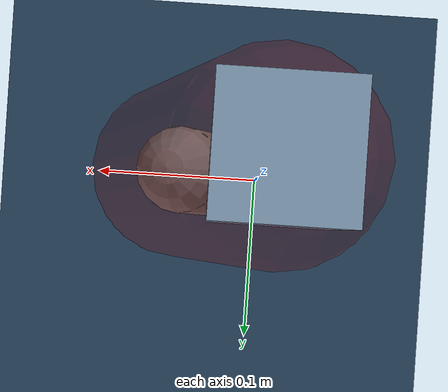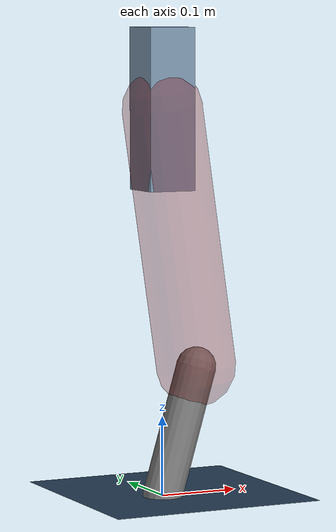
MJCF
<mujoco model="Hopper2D">
	<compiler inertiafromgeom="true" angle="radian" />
	<option timestep="0.001" integrator="implicit" cone="elliptic" solver="Newton" tolerance="1e-10" />

	<default>
		<geom contype="1" conaffinity="1" condim="3" friction="2 0.005 0.0001" solref="0.005 1" />
		<joint limited="true" damping="0.1" />
	</default>

	<asset>
		<texture name="skybox" type="skybox" builtin="gradient" rgb1=".4 .6 .8" rgb2="0 0 0" width="800" height="800" />
		<texture name="grid" type="2d" builtin="checker" rgb1=".1 .2 .3" rgb2=".2 .3 .4" width="300" height="300" mark="edge" markrgb=".2 .3 .4" />
		<material name="ground" texture="grid" texrepeat="1 1" texuniform="true" reflectance="0.1" />
		<material name="leg" rgba="0.5 0.6 0.7 1" />
	</asset>

	<worldbody>

		<geom name="floor" type="plane" size="5 5 0.25" material="ground" />

		<light directional="false" diffuse="0.8 0.8 0.8" specular="0.3 0.3 0.3" pos="0 0 2" dir="0 0 -1" />
		<light mode="targetbodycom" target="base" directional="false" diffuse="0.8 0.8 0.8" specular="0.3 0.3 0.3" pos="0 0 2" dir="0 0 -1" />

		<camera name="fixed" pos="0 -2 1" xyaxes="1 0 0 0 0 1" />
		<camera name="tracking" mode="trackcom" pos="0 -3 1" />

		<body name="root" pos="0 0 0.48170240187957647">
			<joint name="slide_x" type="slide" axis="1 0 0" range="-100 100" />
			<joint name="slide_z" type="slide" axis="0 0 1" range="0 10" />

			<body name="base" pos="0 0 0">
				<geom name="torso" type="box" size="0.03 0.03 0.1" mass="2.5999999999999996" material="leg" />

				<body name="link1" pos="0 0 0" euler="0 1.4272330248749736 0">
					<joint type="hinge" axis="0 -1 0" pos="0 0 0" name="hinge1" limited="true" range="-3.14 3.14" stiffness="0" damping="0.1" />
					<geom name="thigh" type="capsule" fromto="0 0 0 0.3254331829016955 0 0" size="0.05" rgba="0.5 0 0 0.3" mass="1.0582129121247472" />

					<body name="link2" pos="0.3254331829016955 0 0" euler="0 0.42738597246968585 0">
						<joint type="hinge" axis="0 -1 0" pos="0 0 0" name="hinge2" limited="true" range="-3.14 3.14" stiffness="0" damping="0.1" />
						<geom name="shank" type="capsule" fromto="0 0 0 0.16626921897788097 0 0" size="0.025" mass="0.37204229708009284" />

					</body>
				</body>
			</body>
		</body>
	</worldbody>

	<actuator>
		<motor name="torque1" joint="hinge1" ctrlrange="-46.61989181553843 46.61989181553843" ctrllimited="true" gear="1" />
		<motor name="torque2" joint="hinge2" ctrlrange="-77.63405778437243 77.63405778437243" ctrllimited="true" gear="1" />
	</actuator>
</mujoco>
